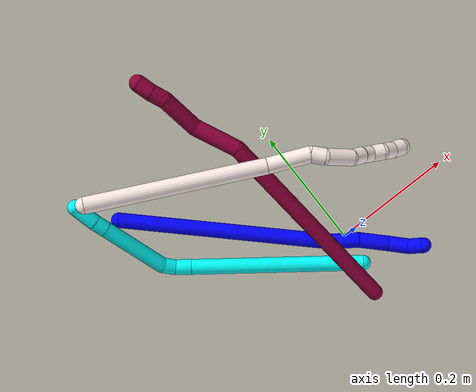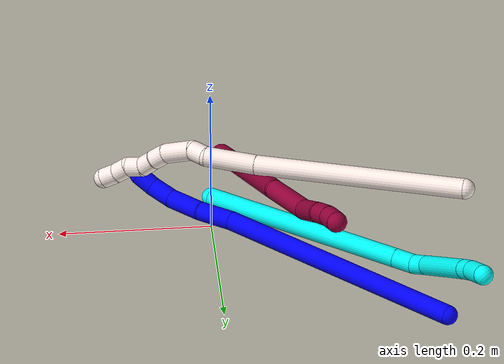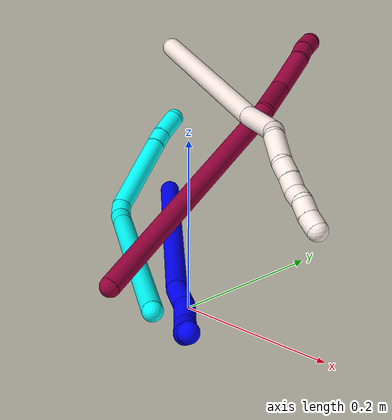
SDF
<sdf version="1.7">
 <world name="default">
  <model name="photoneo_s_sensor">
   <static>1</static>
   <pose>0 0 2 1.57079 1.57079 3.14159</pose>
   <link name="link">
    <inertial><mass>0.1</mass></inertial>
    <sensor name="sensor" type="depth">
     <update_rate>30</update_rate>
     <camera>
      <horizontal_fov>1.22</horizontal_fov>
      <image><width>1920</width><height>1200</height><format>B8G8R8</format></image>
      <clip><near>0.1</near><far>4</far></clip>
      <depth_camera><output>points</output></depth_camera>
     </camera>
     <plugin name="camera_plugin" filename="libgazebo_ros_depth_camera.so">
      <baseline>0.2</baseline>
      <alwaysOn>1</alwaysOn>
      <updateRate>0.0</updateRate>
      <cameraName>camera_ir</cameraName>
      <imageTopicName>/camera/color/image_raw</imageTopicName>
      <cameraInfoTopicName>/camera/color/camera_info</cameraInfoTopicName>
      <depthImageTopicName>/camera/depth/image_raw</depthImageTopicName>
      <depthImageCameraInfoTopicName>/camera/depth/camera_info</depthImageCameraInfoTopicName>
      <pointCloudTopicName>/camera/depth/points</pointCloudTopicName>
      <frameName>fr_optical</frameName>
      <pointCloudCutoff>0.1</pointCloudCutoff>
      <pointCloudCutoffMax>2.0</pointCloudCutoffMax>
      <distortionK1>0</distortionK1>
      <distortionK2>0</distortionK2>
      <distortionK3>0</distortionK3>
      <distortionT1>0</distortionT1>
      <distortionT2>0</distortionT2>
      <CxPrime>0</CxPrime>
      <Cx>0</Cx>
      <Cy>0</Cy>
      <focalLength>0</focalLength>
      <hackBaseline>0</hackBaseline>
     </plugin>
    </sensor>
   </link>
  </model>
  <model name="bin">
   <static>1</static>
   <link name="bottom">
    <collision name="collision-bottom">
     <pose>0 0 -0.01 0 -0 0</pose>
     <geometry><box><size>0.8 0.6 0.02</size></box></geometry>
     <surface>
      <friction><ode><mu>100</mu><mu2>100</mu2></ode></friction>
      <contact><collide_bitmask>65535</collide_bitmask></contact>
     </surface>
    </collision>
   </link>
   <link name="west_wall">
    <collision name="collision-west_wall">
     <pose>-0.41 0 0.1 0 -0 0</pose>
     <geometry><box><size>0.02 0.6 0.2</size></box></geometry>
     <surface>
      <friction><ode><mu>100</mu><mu2>100</mu2></ode></friction>
      <contact><collide_bitmask>65535</collide_bitmask></contact>
     </surface>
    </collision>
   </link>
   <link name="east_wall">
    <collision name="collision-east_wall">
     <pose>0.41 0 0.1 0 -0 0</pose>
     <geometry><box><size>0.02 0.6 0.2</size></box></geometry>
     <surface>
      <friction><ode><mu>100</mu><mu2>100</mu2></ode></friction>
      <contact><collide_bitmask>65535</collide_bitmask></contact>
     </surface>
    </collision>
   </link>
   <link name="south_wall">
    <collision name="collision-south_wall">
     <pose>0 -0.31 0.1 0 -0 0</pose>
     <geometry><box><size>0.8 0.02 0.2</size></box></geometry>
     <surface>
      <friction><ode><mu>100</mu><mu2>100</mu2></ode></friction>
      <contact><collide_bitmask>65535</collide_bitmask></contact>
     </surface>
    </collision>
   </link>
   <link name="north_wall">
    <collision name="collision-north_wall">
     <pose>0 0.31 0.1 0 -0 0</pose>
     <geometry><box><size>0.8 0.02 0.2</size></box></geometry>
     <surface>
      <friction><ode><mu>100</mu><mu2>100</mu2></ode></friction>
      <contact><collide_bitmask>65535</collide_bitmask></contact>
     </surface>
    </collision>
   </link>
  </model>
  <model name="1">
   <static>0</static>
   <link name="1">
    <collision name="collision-cylinder-e_1_1_4">
     <pose>0.086102 -0.117938 -0.092209 2.23437 0.521937 1.00229</pose>
     <geometry><cylinder><radius>0.0125</radius><length>0.345401</length></cylinder></geometry>
     <surface>
      <friction><ode><mu>1.16</mu><mu2>1.16</mu2><slip1>0</slip1><slip2>0</slip2></ode></friction>
      <contact><ode><kp>1e+06</kp><kd>1</kd><max_vel>0</max_vel><min_depth>0.001</min_depth></ode></contact>
     </surface>
    </collision>
    <visual name="visual-cylinder-e_1_1_4">
     <pose>0.086102 -0.117938 -0.092209 2.23437 0.521937 1.00229</pose>
     <geometry><cylinder><radius>0.0125</radius><length>0.345401</length></cylinder></geometry>
     <material><ambient>0 0 1 1</ambient></material>
    </visual>
    <collision name="collision-cylinder-e_2_4_5">
     <pose>0.181406 -0.25455 -0.196151 2.13176 0.395308 0.695258</pose>
     <geometry><cylinder><radius>0.0125</radius><length>0.047793</length></cylinder></geometry>
     <surface>
      <friction><ode><mu>1.16</mu><mu2>1.16</mu2><slip1>0</slip1><slip2>0</slip2></ode></friction>
      <contact><ode><kp>1e+06</kp><kd>1</kd><max_vel>0</max_vel><min_depth>0.001</min_depth></ode></contact>
     </surface>
    </collision>
    <visual name="visual-cylinder-e_2_4_5">
     <pose>0.181406 -0.25455 -0.196151 2.13176 0.395308 0.695258</pose>
     <geometry><cylinder><radius>0.0125</radius><length>0.047793</length></cylinder></geometry>
     <material><ambient>0 0 1 1</ambient></material>
    </visual>
    <collision name="collision-cylinder-e_3_5_6">
     <pose>0.203257 -0.28963 -0.220605 2.23038 0.547227 1.04032</pose>
     <geometry><cylinder><radius>0.0125</radius><length>0.048622</length></cylinder></geometry>
     <surface>
      <friction><ode><mu>1.16</mu><mu2>1.16</mu2><slip1>0</slip1><slip2>0</slip2></ode></friction>
      <contact><ode><kp>1e+06</kp><kd>1</kd><max_vel>0</max_vel><min_depth>0.001</min_depth></ode></contact>
     </surface>
    </collision>
    <visual name="visual-cylinder-e_3_5_6">
     <pose>0.203257 -0.28963 -0.220605 2.23038 0.547227 1.04032</pose>
     <geometry><cylinder><radius>0.0125</radius><length>0.048622</length></cylinder></geometry>
     <material><ambient>0 0 1 1</ambient></material>
    </visual>
    <collision name="collision-cylinder-e_4_6_7">
     <pose>0.223354 -0.316211 -0.244395 2.39819 0.459919 1.08163</pose>
     <geometry><cylinder><radius>0.0125</radius><length>0.033555</length></cylinder></geometry>
     <surface>
      <friction><ode><mu>1.16</mu><mu2>1.16</mu2><slip1>0</slip1><slip2>0</slip2></ode></friction>
      <contact><ode><kp>1e+06</kp><kd>1</kd><max_vel>0</max_vel><min_depth>0.001</min_depth></ode></contact>
     </surface>
    </collision>
    <visual name="visual-cylinder-e_4_6_7">
     <pose>0.223354 -0.316211 -0.244395 2.39819 0.459919 1.08163</pose>
     <geometry><cylinder><radius>0.0125</radius><length>0.033555</length></cylinder></geometry>
     <material><ambient>0 0 1 1</ambient></material>
    </visual>
    <collision name="collision-cylinder-e_5_7_2">
     <pose>0.231977 -0.33355 -0.26541 2.51742 0.095603 0.294406</pose>
     <geometry><cylinder><radius>0.0125</radius><length>0.02463</length></cylinder></geometry>
     <surface>
      <friction><ode><mu>1.16</mu><mu2>1.16</mu2><slip1>0</slip1><slip2>0</slip2></ode></friction>
      <contact><ode><kp>1e+06</kp><kd>1</kd><max_vel>0</max_vel><min_depth>0.001</min_depth></ode></contact>
     </surface>
    </collision>
    <visual name="visual-cylinder-e_5_7_2">
     <pose>0.231977 -0.33355 -0.26541 2.51742 0.095603 0.294406</pose>
     <geometry><cylinder><radius>0.0125</radius><length>0.02463</length></cylinder></geometry>
     <material><ambient>0 0 1 1</ambient></material>
    </visual>
    <collision name="collision-sphere-2">
     <pose>0.233152 -0.340714 -0.275357 0 -0 0</pose>
     <geometry><sphere><radius>0.0125</radius></sphere></geometry>
     <surface>
      <friction><ode><mu>1.16</mu><mu2>1.16</mu2><slip1>0</slip1><slip2>0</slip2></ode></friction>
      <contact><ode><kp>1e+06</kp><kd>1</kd><max_vel>0</max_vel><min_depth>0.001</min_depth></ode></contact>
     </surface>
    </collision>
    <visual name="visual-sphere-2">
     <pose>0.233152 -0.340714 -0.275357 0 -0 0</pose>
     <geometry><sphere><radius>0.0125</radius></sphere></geometry>
     <material><ambient>0 0 1 1</ambient></material>
    </visual>
    <collision name="collision-sphere-7">
     <pose>0.230801 -0.326386 -0.255462 0 -0 0</pose>
     <geometry><sphere><radius>0.0125</radius></sphere></geometry>
     <surface>
      <friction><ode><mu>1.16</mu><mu2>1.16</mu2><slip1>0</slip1><slip2>0</slip2></ode></friction>
      <contact><ode><kp>1e+06</kp><kd>1</kd><max_vel>0</max_vel><min_depth>0.001</min_depth></ode></contact>
     </surface>
    </collision>
    <visual name="visual-sphere-7">
     <pose>0.230801 -0.326386 -0.255462 0 -0 0</pose>
     <geometry><sphere><radius>0.0125</radius></sphere></geometry>
     <material><ambient>0 0 1 1</ambient></material>
    </visual>
    <collision name="collision-sphere-6">
     <pose>0.215907 -0.306036 -0.233327 0 -0 0</pose>
     <geometry><sphere><radius>0.0125</radius></sphere></geometry>
     <surface>
      <friction><ode><mu>1.16</mu><mu2>1.16</mu2><slip1>0</slip1><slip2>0</slip2></ode></friction>
      <contact><ode><kp>1e+06</kp><kd>1</kd><max_vel>0</max_vel><min_depth>0.001</min_depth></ode></contact>
     </surface>
    </collision>
    <visual name="visual-sphere-6">
     <pose>0.215907 -0.306036 -0.233327 0 -0 0</pose>
     <geometry><sphere><radius>0.0125</radius></sphere></geometry>
     <material><ambient>0 0 1 1</ambient></material>
    </visual>
    <collision name="collision-sphere-5">
     <pose>0.190608 -0.273224 -0.207883 0 -0 0</pose>
     <geometry><sphere><radius>0.0125</radius></sphere></geometry>
     <surface>
      <friction><ode><mu>1.16</mu><mu2>1.16</mu2><slip1>0</slip1><slip2>0</slip2></ode></friction>
      <contact><ode><kp>1e+06</kp><kd>1</kd><max_vel>0</max_vel><min_depth>0.001</min_depth></ode></contact>
     </surface>
    </collision>
    <visual name="visual-sphere-5">
     <pose>0.190608 -0.273224 -0.207883 0 -0 0</pose>
     <geometry><sphere><radius>0.0125</radius></sphere></geometry>
     <material><ambient>0 0 1 1</ambient></material>
    </visual>
    <collision name="collision-sphere-1">
     <geometry><sphere><radius>0.0125</radius></sphere></geometry>
     <surface>
      <friction><ode><mu>1.16</mu><mu2>1.16</mu2><slip1>0</slip1><slip2>0</slip2></ode></friction>
      <contact><ode><kp>1e+06</kp><kd>1</kd><max_vel>0</max_vel><min_depth>0.001</min_depth></ode></contact>
     </surface>
    </collision>
    <visual name="visual-sphere-1">
     <geometry><sphere><radius>0.0125</radius></sphere></geometry>
     <material><ambient>0 0 1 1</ambient></material>
    </visual>
    <collision name="collision-sphere-4">
     <pose>0.172203 -0.235876 -0.184418 0 -0 0</pose>
     <geometry><sphere><radius>0.0125</radius></sphere></geometry>
     <surface>
      <friction><ode><mu>1.16</mu><mu2>1.16</mu2><slip1>0</slip1><slip2>0</slip2></ode></friction>
      <contact><ode><kp>1e+06</kp><kd>1</kd><max_vel>0</max_vel><min_depth>0.001</min_depth></ode></contact>
     </surface>
    </collision>
    <visual name="visual-sphere-4">
     <pose>0.172203 -0.235876 -0.184418 0 -0 0</pose>
     <geometry><sphere><radius>0.0125</radius></sphere></geometry>
     <material><ambient>0 0 1 1</ambient></material>
    </visual>
    <inertial>
     <pose>0.123001 -0.171619 -0.133375 0 -0 0</pose>
     <mass>0.5</mass>
     <inertia>
      <ixx>0.004181</ixx>
      <ixy>0</ixy>
      <ixz>0</ixz>
      <iyy>0.002505</iyy>
      <iyz>0</iyz>
      <izz>0.000622</izz>
     </inertia>
    </inertial>
   </link>
   <pose>-0.276782 0.245338 0.012512 2.85285 0.567874 -1.69768</pose>
  </model>
  <model name="3">
   <static>0</static>
   <link name="3">
    <collision name="collision-cylinder-e_1_1_4">
     <pose>-0.057782 0.045747 0.118229 -0.369194 -0.427665 0.08105</pose>
     <geometry><cylinder><radius>0.0125</radius><length>0.278638</length></cylinder></geometry>
     <surface>
      <friction><ode><mu>1.16</mu><mu2>1.16</mu2><slip1>0</slip1><slip2>0</slip2></ode></friction>
      <contact><ode><kp>1e+06</kp><kd>1</kd><max_vel>0</max_vel><min_depth>0.001</min_depth></ode></contact>
     </surface>
    </collision>
    <visual name="visual-cylinder-e_1_1_4">
     <pose>-0.057782 0.045747 0.118229 -0.369194 -0.427665 0.08105</pose>
     <geometry><cylinder><radius>0.0125</radius><length>0.278638</length></cylinder></geometry>
     <material><ambient>0.003922 1 0.996078 1</ambient></material>
    </visual>
    <collision name="collision-cylinder-e_2_4_5">
     <pose>-0.121073 0.095861 0.247918 -0.364016 -0.422169 0.078832</pose>
     <geometry><cylinder><radius>0.0125</radius><length>0.026887</length></cylinder></geometry>
     <surface>
      <friction><ode><mu>1.16</mu><mu2>1.16</mu2><slip1>0</slip1><slip2>0</slip2></ode></friction>
      <contact><ode><kp>1e+06</kp><kd>1</kd><max_vel>0</max_vel><min_depth>0.001</min_depth></ode></contact>
     </surface>
    </collision>
    <visual name="visual-cylinder-e_2_4_5">
     <pose>-0.121073 0.095861 0.247918 -0.364016 -0.422169 0.078832</pose>
     <geometry><cylinder><radius>0.0125</radius><length>0.026887</length></cylinder></geometry>
     <material><ambient>0.003922 1 0.996078 1</ambient></material>
    </visual>
    <collision name="collision-cylinder-e_3_5_6">
     <pose>-0.134486 0.103254 0.266237 -0.415676 -0.811883 0.180787</pose>
     <geometry><cylinder><radius>0.0125</radius><length>0.021789</length></cylinder></geometry>
     <surface>
      <friction><ode><mu>1.16</mu><mu2>1.16</mu2><slip1>0</slip1><slip2>0</slip2></ode></friction>
      <contact><ode><kp>1e+06</kp><kd>1</kd><max_vel>0</max_vel><min_depth>0.001</min_depth></ode></contact>
     </surface>
    </collision>
    <visual name="visual-cylinder-e_3_5_6">
     <pose>-0.134486 0.103254 0.266237 -0.415676 -0.811883 0.180787</pose>
     <geometry><cylinder><radius>0.0125</radius><length>0.021789</length></cylinder></geometry>
     <material><ambient>0.003922 1 0.996078 1</ambient></material>
    </visual>
    <collision name="collision-cylinder-e_4_6_7">
     <pose>-0.19458 0.103962 0.296863 0.09726 -1.14165 -0.062483</pose>
     <geometry><cylinder><radius>0.0125</radius><length>0.114787</length></cylinder></geometry>
     <surface>
      <friction><ode><mu>1.16</mu><mu2>1.16</mu2><slip1>0</slip1><slip2>0</slip2></ode></friction>
      <contact><ode><kp>1e+06</kp><kd>1</kd><max_vel>0</max_vel><min_depth>0.001</min_depth></ode></contact>
     </surface>
    </collision>
    <visual name="visual-cylinder-e_4_6_7">
     <pose>-0.19458 0.103962 0.296863 0.09726 -1.14165 -0.062483</pose>
     <geometry><cylinder><radius>0.0125</radius><length>0.114787</length></cylinder></geometry>
     <material><ambient>0.003922 1 0.996078 1</ambient></material>
    </visual>
    <collision name="collision-cylinder-e_5_7_8">
     <pose>-0.256052 0.101199 0.325321 0.094422 -1.10122 -0.057997</pose>
     <geometry><cylinder><radius>0.0125</radius><length>0.02082</length></cylinder></geometry>
     <surface>
      <friction><ode><mu>1.16</mu><mu2>1.16</mu2><slip1>0</slip1><slip2>0</slip2></ode></friction>
      <contact><ode><kp>1e+06</kp><kd>1</kd><max_vel>0</max_vel><min_depth>0.001</min_depth></ode></contact>
     </surface>
    </collision>
    <visual name="visual-cylinder-e_5_7_8">
     <pose>-0.256052 0.101199 0.325321 0.094422 -1.10122 -0.057997</pose>
     <geometry><cylinder><radius>0.0125</radius><length>0.02082</length></cylinder></geometry>
     <material><ambient>0.003922 1 0.996078 1</ambient></material>
    </visual>
    <collision name="collision-cylinder-e_6_8_2">
     <pose>-0.281657 0.097873 0.338317 0.333962 -1.07668 -0.200632</pose>
     <geometry><cylinder><radius>0.0125</radius><length>0.037079</length></cylinder></geometry>
     <surface>
      <friction><ode><mu>1.16</mu><mu2>1.16</mu2><slip1>0</slip1><slip2>0</slip2></ode></friction>
      <contact><ode><kp>1e+06</kp><kd>1</kd><max_vel>0</max_vel><min_depth>0.001</min_depth></ode></contact>
     </surface>
    </collision>
    <visual name="visual-cylinder-e_6_8_2">
     <pose>-0.281657 0.097873 0.338317 0.333962 -1.07668 -0.200632</pose>
     <geometry><cylinder><radius>0.0125</radius><length>0.037079</length></cylinder></geometry>
     <material><ambient>0.003922 1 0.996078 1</ambient></material>
    </visual>
    <collision name="collision-sphere-2">
     <pose>-0.297979 0.094991 0.346624 0 -0 0</pose>
     <geometry><sphere><radius>0.0125</radius></sphere></geometry>
     <surface>
      <friction><ode><mu>1.16</mu><mu2>1.16</mu2><slip1>0</slip1><slip2>0</slip2></ode></friction>
      <contact><ode><kp>1e+06</kp><kd>1</kd><max_vel>0</max_vel><min_depth>0.001</min_depth></ode></contact>
     </surface>
    </collision>
    <visual name="visual-sphere-2">
     <pose>-0.297979 0.094991 0.346624 0 -0 0</pose>
     <geometry><sphere><radius>0.0125</radius></sphere></geometry>
     <material><ambient>0.003922 1 0.996078 1</ambient></material>
    </visual>
    <collision name="collision-sphere-4">
     <pose>-0.115564 0.091494 0.236459 0 -0 0</pose>
     <geometry><sphere><radius>0.0125</radius></sphere></geometry>
     <surface>
      <friction><ode><mu>1.16</mu><mu2>1.16</mu2><slip1>0</slip1><slip2>0</slip2></ode></friction>
      <contact><ode><kp>1e+06</kp><kd>1</kd><max_vel>0</max_vel><min_depth>0.001</min_depth></ode></contact>
     </surface>
    </collision>
    <visual name="visual-sphere-4">
     <pose>-0.115564 0.091494 0.236459 0 -0 0</pose>
     <geometry><sphere><radius>0.0125</radius></sphere></geometry>
     <material><ambient>0.003922 1 0.996078 1</ambient></material>
    </visual>
    <collision name="collision-sphere-1">
     <geometry><sphere><radius>0.0125</radius></sphere></geometry>
     <surface>
      <friction><ode><mu>1.16</mu><mu2>1.16</mu2><slip1>0</slip1><slip2>0</slip2></ode></friction>
      <contact><ode><kp>1e+06</kp><kd>1</kd><max_vel>0</max_vel><min_depth>0.001</min_depth></ode></contact>
     </surface>
    </collision>
    <visual name="visual-sphere-1">
     <geometry><sphere><radius>0.0125</radius></sphere></geometry>
     <material><ambient>0.003922 1 0.996078 1</ambient></material>
    </visual>
    <collision name="collision-sphere-8">
     <pose>-0.265335 0.100755 0.330011 0 -0 0</pose>
     <geometry><sphere><radius>0.0125</radius></sphere></geometry>
     <surface>
      <friction><ode><mu>1.16</mu><mu2>1.16</mu2><slip1>0</slip1><slip2>0</slip2></ode></friction>
      <contact><ode><kp>1e+06</kp><kd>1</kd><max_vel>0</max_vel><min_depth>0.001</min_depth></ode></contact>
     </surface>
    </collision>
    <visual name="visual-sphere-8">
     <pose>-0.265335 0.100755 0.330011 0 -0 0</pose>
     <geometry><sphere><radius>0.0125</radius></sphere></geometry>
     <material><ambient>0.003922 1 0.996078 1</ambient></material>
    </visual>
    <collision name="collision-sphere-5">
     <pose>-0.126581 0.100227 0.259378 0 -0 0</pose>
     <geometry><sphere><radius>0.0125</radius></sphere></geometry>
     <surface>
      <friction><ode><mu>1.16</mu><mu2>1.16</mu2><slip1>0</slip1><slip2>0</slip2></ode></friction>
      <contact><ode><kp>1e+06</kp><kd>1</kd><max_vel>0</max_vel><min_depth>0.001</min_depth></ode></contact>
     </surface>
    </collision>
    <visual name="visual-sphere-5">
     <pose>-0.126581 0.100227 0.259378 0 -0 0</pose>
     <geometry><sphere><radius>0.0125</radius></sphere></geometry>
     <material><ambient>0.003922 1 0.996078 1</ambient></material>
    </visual>
    <collision name="collision-sphere-6">
     <pose>-0.142391 0.106281 0.273095 0 -0 0</pose>
     <geometry><sphere><radius>0.0125</radius></sphere></geometry>
     <surface>
      <friction><ode><mu>1.16</mu><mu2>1.16</mu2><slip1>0</slip1><slip2>0</slip2></ode></friction>
      <contact><ode><kp>1e+06</kp><kd>1</kd><max_vel>0</max_vel><min_depth>0.001</min_depth></ode></contact>
     </surface>
    </collision>
    <visual name="visual-sphere-6">
     <pose>-0.142391 0.106281 0.273095 0 -0 0</pose>
     <geometry><sphere><radius>0.0125</radius></sphere></geometry>
     <material><ambient>0.003922 1 0.996078 1</ambient></material>
    </visual>
    <collision name="collision-sphere-7">
     <pose>-0.246769 0.101643 0.320632 0 -0 0</pose>
     <geometry><sphere><radius>0.0125</radius></sphere></geometry>
     <surface>
      <friction><ode><mu>1.16</mu><mu2>1.16</mu2><slip1>0</slip1><slip2>0</slip2></ode></friction>
      <contact><ode><kp>1e+06</kp><kd>1</kd><max_vel>0</max_vel><min_depth>0.001</min_depth></ode></contact>
     </surface>
    </collision>
    <visual name="visual-sphere-7">
     <pose>-0.246769 0.101643 0.320632 0 -0 0</pose>
     <geometry><sphere><radius>0.0125</radius></sphere></geometry>
     <material><ambient>0.003922 1 0.996078 1</ambient></material>
    </visual>
    <inertial>
     <pose>-0.120791 0.070487 0.197607 0 -0 0</pose>
     <mass>0.5</mass>
     <inertia>
      <ixx>0.001813</ixx>
      <ixy>0</ixy>
      <ixz>0</ixz>
      <iyy>0.001987</iyy>
      <iyz>0</iyz>
      <izz>0.000316</izz>
     </inertia>
    </inertial>
   </link>
   <pose>-0.004237 -0.05285 0.011499 2.56641 0.910862 -1.46275</pose>
  </model>
  <model name="8">
   <static>0</static>
   <link name="8">
    <collision name="collision-cylinder-e_1_1_4">
     <pose>-0.008889 0.10876 0.120682 -0.733482 -0.054664 0.021002</pose>
     <geometry><cylinder><radius>0.0125</radius><length>0.325404</length></cylinder></geometry>
     <surface>
      <friction><ode><mu>1.16</mu><mu2>1.16</mu2><slip1>0</slip1><slip2>0</slip2></ode></friction>
      <contact><ode><kp>1e+06</kp><kd>1</kd><max_vel>0</max_vel><min_depth>0.001</min_depth></ode></contact>
     </surface>
    </collision>
    <visual name="visual-cylinder-e_1_1_4">
     <pose>-0.008889 0.10876 0.120682 -0.733482 -0.054664 0.021002</pose>
     <geometry><cylinder><radius>0.0125</radius><length>0.325404</length></cylinder></geometry>
     <material><ambient>0.584314 0 0.227451 1</ambient></material>
    </visual>
    <collision name="collision-cylinder-e_2_4_5">
     <pose>-0.007598 0.244741 0.260747 -0.952053 0.295723 -0.153286</pose>
     <geometry><cylinder><radius>0.0125</radius><length>0.069868</length></cylinder></geometry>
     <surface>
      <friction><ode><mu>1.16</mu><mu2>1.16</mu2><slip1>0</slip1><slip2>0</slip2></ode></friction>
      <contact><ode><kp>1e+06</kp><kd>1</kd><max_vel>0</max_vel><min_depth>0.001</min_depth></ode></contact>
     </surface>
    </collision>
    <visual name="visual-cylinder-e_2_4_5">
     <pose>-0.007598 0.244741 0.260747 -0.952053 0.295723 -0.153286</pose>
     <geometry><cylinder><radius>0.0125</radius><length>0.069868</length></cylinder></geometry>
     <material><ambient>0.584314 0 0.227451 1</ambient></material>
    </visual>
    <collision name="collision-cylinder-e_3_5_6">
     <pose>-0.000908 0.293872 0.300185 -0.829531 -0.116997 0.051562</pose>
     <geometry><cylinder><radius>0.0125</radius><length>0.059814</length></cylinder></geometry>
     <surface>
      <friction><ode><mu>1.16</mu><mu2>1.16</mu2><slip1>0</slip1><slip2>0</slip2></ode></friction>
      <contact><ode><kp>1e+06</kp><kd>1</kd><max_vel>0</max_vel><min_depth>0.001</min_depth></ode></contact>
     </surface>
    </collision>
    <visual name="visual-cylinder-e_3_5_6">
     <pose>-0.000908 0.293872 0.300185 -0.829531 -0.116997 0.051562</pose>
     <geometry><cylinder><radius>0.0125</radius><length>0.059814</length></cylinder></geometry>
     <material><ambient>0.584314 0 0.227451 1</ambient></material>
    </visual>
    <collision name="collision-cylinder-e_4_6_7">
     <pose>-0.003162 0.32519 0.326405 -0.990813 0.109543 -0.059234</pose>
     <geometry><cylinder><radius>0.0125</radius><length>0.022632</length></cylinder></geometry>
     <surface>
      <friction><ode><mu>1.16</mu><mu2>1.16</mu2><slip1>0</slip1><slip2>0</slip2></ode></friction>
      <contact><ode><kp>1e+06</kp><kd>1</kd><max_vel>0</max_vel><min_depth>0.001</min_depth></ode></contact>
     </surface>
    </collision>
    <visual name="visual-cylinder-e_4_6_7">
     <pose>-0.003162 0.32519 0.326405 -0.990813 0.109543 -0.059234</pose>
     <geometry><cylinder><radius>0.0125</radius><length>0.022632</length></cylinder></geometry>
     <material><ambient>0.584314 0 0.227451 1</ambient></material>
    </visual>
    <collision name="collision-cylinder-e_5_7_2">
     <pose>5.2e-05 0.342743 0.339911 -0.837184 0.178411 -0.079542</pose>
     <geometry><cylinder><radius>0.0125</radius><length>0.022283</length></cylinder></geometry>
     <surface>
      <friction><ode><mu>1.16</mu><mu2>1.16</mu2><slip1>0</slip1><slip2>0</slip2></ode></friction>
      <contact><ode><kp>1e+06</kp><kd>1</kd><max_vel>0</max_vel><min_depth>0.001</min_depth></ode></contact>
     </surface>
    </collision>
    <visual name="visual-cylinder-e_5_7_2">
     <pose>5.2e-05 0.342743 0.339911 -0.837184 0.178411 -0.079542</pose>
     <geometry><cylinder><radius>0.0125</radius><length>0.022283</length></cylinder></geometry>
     <material><ambient>0.584314 0 0.227451 1</ambient></material>
    </visual>
    <collision name="collision-sphere-2">
     <pose>0.002029 0.350887 0.347252 0 -0 0</pose>
     <geometry><sphere><radius>0.0125</radius></sphere></geometry>
     <surface>
      <friction><ode><mu>1.16</mu><mu2>1.16</mu2><slip1>0</slip1><slip2>0</slip2></ode></friction>
      <contact><ode><kp>1e+06</kp><kd>1</kd><max_vel>0</max_vel><min_depth>0.001</min_depth></ode></contact>
     </surface>
    </collision>
    <visual name="visual-sphere-2">
     <pose>0.002029 0.350887 0.347252 0 -0 0</pose>
     <geometry><sphere><radius>0.0125</radius></sphere></geometry>
     <material><ambient>0.584314 0 0.227451 1</ambient></material>
    </visual>
    <collision name="collision-sphere-7">
     <pose>-0.001925 0.334599 0.332569 0 -0 0</pose>
     <geometry><sphere><radius>0.0125</radius></sphere></geometry>
     <surface>
      <friction><ode><mu>1.16</mu><mu2>1.16</mu2><slip1>0</slip1><slip2>0</slip2></ode></friction>
      <contact><ode><kp>1e+06</kp><kd>1</kd><max_vel>0</max_vel><min_depth>0.001</min_depth></ode></contact>
     </surface>
    </collision>
    <visual name="visual-sphere-7">
     <pose>-0.001925 0.334599 0.332569 0 -0 0</pose>
     <geometry><sphere><radius>0.0125</radius></sphere></geometry>
     <material><ambient>0.584314 0 0.227451 1</ambient></material>
    </visual>
    <collision name="collision-sphere-6">
     <pose>-0.004399 0.315781 0.320241 0 -0 0</pose>
     <geometry><sphere><radius>0.0125</radius></sphere></geometry>
     <surface>
      <friction><ode><mu>1.16</mu><mu2>1.16</mu2><slip1>0</slip1><slip2>0</slip2></ode></friction>
      <contact><ode><kp>1e+06</kp><kd>1</kd><max_vel>0</max_vel><min_depth>0.001</min_depth></ode></contact>
     </surface>
    </collision>
    <visual name="visual-sphere-6">
     <pose>-0.004399 0.315781 0.320241 0 -0 0</pose>
     <geometry><sphere><radius>0.0125</radius></sphere></geometry>
     <material><ambient>0.584314 0 0.227451 1</ambient></material>
    </visual>
    <collision name="collision-sphere-5">
     <pose>0.002583 0.271964 0.28013 0 -0 0</pose>
     <geometry><sphere><radius>0.0125</radius></sphere></geometry>
     <surface>
      <friction><ode><mu>1.16</mu><mu2>1.16</mu2><slip1>0</slip1><slip2>0</slip2></ode></friction>
      <contact><ode><kp>1e+06</kp><kd>1</kd><max_vel>0</max_vel><min_depth>0.001</min_depth></ode></contact>
     </surface>
    </collision>
    <visual name="visual-sphere-5">
     <pose>0.002583 0.271964 0.28013 0 -0 0</pose>
     <geometry><sphere><radius>0.0125</radius></sphere></geometry>
     <material><ambient>0.584314 0 0.227451 1</ambient></material>
    </visual>
    <collision name="collision-sphere-1">
     <geometry><sphere><radius>0.0125</radius></sphere></geometry>
     <surface>
      <friction><ode><mu>1.16</mu><mu2>1.16</mu2><slip1>0</slip1><slip2>0</slip2></ode></friction>
      <contact><ode><kp>1e+06</kp><kd>1</kd><max_vel>0</max_vel><min_depth>0.001</min_depth></ode></contact>
     </surface>
    </collision>
    <visual name="visual-sphere-1">
     <geometry><sphere><radius>0.0125</radius></sphere></geometry>
     <material><ambient>0.584314 0 0.227451 1</ambient></material>
    </visual>
    <collision name="collision-sphere-4">
     <pose>-0.017779 0.217519 0.241365 0 -0 0</pose>
     <geometry><sphere><radius>0.0125</radius></sphere></geometry>
     <surface>
      <friction><ode><mu>1.16</mu><mu2>1.16</mu2><slip1>0</slip1><slip2>0</slip2></ode></friction>
      <contact><ode><kp>1e+06</kp><kd>1</kd><max_vel>0</max_vel><min_depth>0.001</min_depth></ode></contact>
     </surface>
    </collision>
    <visual name="visual-sphere-4">
     <pose>-0.017779 0.217519 0.241365 0 -0 0</pose>
     <geometry><sphere><radius>0.0125</radius></sphere></geometry>
     <material><ambient>0.584314 0 0.227451 1</ambient></material>
    </visual>
    <inertial>
     <pose>-0.007097 0.17013 0.18081 0 -0 0</pose>
     <mass>0.5</mass>
     <inertia>
      <ixx>0.002989</ixx>
      <ixy>0</ixy>
      <ixz>0</ixz>
      <iyy>0.002263</iyy>
      <iyz>0</iyz>
      <izz>-0.001792</izz>
     </inertia>
    </inertial>
   </link>
   <pose>-0.022048 -0.099696 0.050034 1.44654 1.08659 2.50279</pose>
  </model>
  <model name="11">
   <static>0</static>
   <link name="11">
    <collision name="collision-cylinder-e_1_1_4">
     <pose>0.104086 -0.084621 -0.003325 1.61007 0.887803 0.918648</pose>
     <geometry><cylinder><radius>0.0125</radius><length>0.26837</length></cylinder></geometry>
     <surface>
      <friction><ode><mu>1.16</mu><mu2>1.16</mu2><slip1>0</slip1><slip2>0</slip2></ode></friction>
      <contact><ode><kp>1e+06</kp><kd>1</kd><max_vel>0</max_vel><min_depth>0.001</min_depth></ode></contact>
     </surface>
    </collision>
    <visual name="visual-cylinder-e_1_1_4">
     <pose>0.104086 -0.084621 -0.003325 1.61007 0.887803 0.918648</pose>
     <geometry><cylinder><radius>0.0125</radius><length>0.26837</length></cylinder></geometry>
     <material><ambient>1 0.933333 0.909804 1</ambient></material>
    </visual>
    <collision name="collision-cylinder-e_2_4_5">
     <pose>0.234796 -0.188482 -0.004933 1.48181 0.943176 0.872967</pose>
     <geometry><cylinder><radius>0.0125</radius><length>0.065788</length></cylinder></geometry>
     <surface>
      <friction><ode><mu>1.16</mu><mu2>1.16</mu2><slip1>0</slip1><slip2>0</slip2></ode></friction>
      <contact><ode><kp>1e+06</kp><kd>1</kd><max_vel>0</max_vel><min_depth>0.001</min_depth></ode></contact>
     </surface>
    </collision>
    <visual name="visual-cylinder-e_2_4_5">
     <pose>0.234796 -0.188482 -0.004933 1.48181 0.943176 0.872967</pose>
     <geometry><cylinder><radius>0.0125</radius><length>0.065788</length></cylinder></geometry>
     <material><ambient>1 0.933333 0.909804 1</ambient></material>
    </visual>
    <collision name="collision-cylinder-e_3_5_6">
     <pose>0.266929 -0.217207 -0.00175 1.41734 0.520947 0.449238</pose>
     <geometry><cylinder><radius>0.0125</radius><length>0.022131</length></cylinder></geometry>
     <surface>
      <friction><ode><mu>1.16</mu><mu2>1.16</mu2><slip1>0</slip1><slip2>0</slip2></ode></friction>
      <contact><ode><kp>1e+06</kp><kd>1</kd><max_vel>0</max_vel><min_depth>0.001</min_depth></ode></contact>
     </surface>
    </collision>
    <visual name="visual-cylinder-e_3_5_6">
     <pose>0.266929 -0.217207 -0.00175 1.41734 0.520947 0.449238</pose>
     <geometry><cylinder><radius>0.0125</radius><length>0.022131</length></cylinder></geometry>
     <material><ambient>1 0.933333 0.909804 1</ambient></material>
    </visual>
    <collision name="collision-cylinder-e_4_6_7">
     <pose>0.284624 -0.243467 -0.00684 1.94342 0.594905 0.843974</pose>
     <geometry><cylinder><radius>0.0125</radius><length>0.043494</length></cylinder></geometry>
     <surface>
      <friction><ode><mu>1.16</mu><mu2>1.16</mu2><slip1>0</slip1><slip2>0</slip2></ode></friction>
      <contact><ode><kp>1e+06</kp><kd>1</kd><max_vel>0</max_vel><min_depth>0.001</min_depth></ode></contact>
     </surface>
    </collision>
    <visual name="visual-cylinder-e_4_6_7">
     <pose>0.284624 -0.243467 -0.00684 1.94342 0.594905 0.843974</pose>
     <geometry><cylinder><radius>0.0125</radius><length>0.043494</length></cylinder></geometry>
     <material><ambient>1 0.933333 0.909804 1</ambient></material>
    </visual>
    <collision name="collision-cylinder-e_5_7_8">
     <pose>0.303128 -0.265729 -0.018993 2.36606 0.678327 1.42485</pose>
     <geometry><cylinder><radius>0.0125</radius><length>0.020132</length></cylinder></geometry>
     <surface>
      <friction><ode><mu>1.16</mu><mu2>1.16</mu2><slip1>0</slip1><slip2>0</slip2></ode></friction>
      <contact><ode><kp>1e+06</kp><kd>1</kd><max_vel>0</max_vel><min_depth>0.001</min_depth></ode></contact>
     </surface>
    </collision>
    <visual name="visual-cylinder-e_5_7_8">
     <pose>0.303128 -0.265729 -0.018993 2.36606 0.678327 1.42485</pose>
     <geometry><cylinder><radius>0.0125</radius><length>0.020132</length></cylinder></geometry>
     <material><ambient>1 0.933333 0.909804 1</ambient></material>
    </visual>
    <collision name="collision-cylinder-e_6_8_9">
     <pose>0.314978 -0.27704 -0.030613 2.37306 0.583683 1.27794</pose>
     <geometry><cylinder><radius>0.0125</radius><length>0.020081</length></cylinder></geometry>
     <surface>
      <friction><ode><mu>1.16</mu><mu2>1.16</mu2><slip1>0</slip1><slip2>0</slip2></ode></friction>
      <contact><ode><kp>1e+06</kp><kd>1</kd><max_vel>0</max_vel><min_depth>0.001</min_depth></ode></contact>
     </surface>
    </collision>
    <visual name="visual-cylinder-e_6_8_9">
     <pose>0.314978 -0.27704 -0.030613 2.37306 0.583683 1.27794</pose>
     <geometry><cylinder><radius>0.0125</radius><length>0.020081</length></cylinder></geometry>
     <material><ambient>1 0.933333 0.909804 1</ambient></material>
    </visual>
    <collision name="collision-cylinder-e_7_9_10">
     <pose>0.327909 -0.28943 -0.038107 1.7911 0.832645 1.00897</pose>
     <geometry><cylinder><radius>0.0125</radius><length>0.02</length></cylinder></geometry>
     <surface>
      <friction><ode><mu>1.16</mu><mu2>1.16</mu2><slip1>0</slip1><slip2>0</slip2></ode></friction>
      <contact><ode><kp>1e+06</kp><kd>1</kd><max_vel>0</max_vel><min_depth>0.001</min_depth></ode></contact>
     </surface>
    </collision>
    <visual name="visual-cylinder-e_7_9_10">
     <pose>0.327909 -0.28943 -0.038107 1.7911 0.832645 1.00897</pose>
     <geometry><cylinder><radius>0.0125</radius><length>0.02</length></cylinder></geometry>
     <material><ambient>1 0.933333 0.909804 1</ambient></material>
    </visual>
    <collision name="collision-cylinder-e_8_10_11">
     <pose>0.341086 -0.301908 -0.045204 2.33149 0.616239 1.27707</pose>
     <geometry><cylinder><radius>0.0125</radius><length>0.020001</length></cylinder></geometry>
     <surface>
      <friction><ode><mu>1.16</mu><mu2>1.16</mu2><slip1>0</slip1><slip2>0</slip2></ode></friction>
      <contact><ode><kp>1e+06</kp><kd>1</kd><max_vel>0</max_vel><min_depth>0.001</min_depth></ode></contact>
     </surface>
    </collision>
    <visual name="visual-cylinder-e_8_10_11">
     <pose>0.341086 -0.301908 -0.045204 2.33149 0.616239 1.27707</pose>
     <geometry><cylinder><radius>0.0125</radius><length>0.020001</length></cylinder></geometry>
     <material><ambient>1 0.933333 0.909804 1</ambient></material>
    </visual>
    <collision name="collision-cylinder-e_9_11_2">
     <pose>0.353972 -0.313171 -0.0554 2.27756 0.790298 1.47073</pose>
     <geometry><cylinder><radius>0.0125</radius><length>0.020002</length></cylinder></geometry>
     <surface>
      <friction><ode><mu>1.16</mu><mu2>1.16</mu2><slip1>0</slip1><slip2>0</slip2></ode></friction>
      <contact><ode><kp>1e+06</kp><kd>1</kd><max_vel>0</max_vel><min_depth>0.001</min_depth></ode></contact>
     </surface>
    </collision>
    <visual name="visual-cylinder-e_9_11_2">
     <pose>0.353972 -0.313171 -0.0554 2.27756 0.790298 1.47073</pose>
     <geometry><cylinder><radius>0.0125</radius><length>0.020002</length></cylinder></geometry>
     <material><ambient>1 0.933333 0.909804 1</ambient></material>
    </visual>
    <collision name="collision-sphere-2">
     <pose>0.361078 -0.318522 -0.05997 0 -0 0</pose>
     <geometry><sphere><radius>0.0125</radius></sphere></geometry>
     <surface>
      <friction><ode><mu>1.16</mu><mu2>1.16</mu2><slip1>0</slip1><slip2>0</slip2></ode></friction>
      <contact><ode><kp>1e+06</kp><kd>1</kd><max_vel>0</max_vel><min_depth>0.001</min_depth></ode></contact>
     </surface>
    </collision>
    <visual name="visual-sphere-2">
     <pose>0.361078 -0.318522 -0.05997 0 -0 0</pose>
     <geometry><sphere><radius>0.0125</radius></sphere></geometry>
     <material><ambient>1 0.933333 0.909804 1</ambient></material>
    </visual>
    <collision name="collision-sphere-11">
     <pose>0.346866 -0.307819 -0.050831 0 -0 0</pose>
     <geometry><sphere><radius>0.0125</radius></sphere></geometry>
     <surface>
      <friction><ode><mu>1.16</mu><mu2>1.16</mu2><slip1>0</slip1><slip2>0</slip2></ode></friction>
      <contact><ode><kp>1e+06</kp><kd>1</kd><max_vel>0</max_vel><min_depth>0.001</min_depth></ode></contact>
     </surface>
    </collision>
    <visual name="visual-sphere-11">
     <pose>0.346866 -0.307819 -0.050831 0 -0 0</pose>
     <geometry><sphere><radius>0.0125</radius></sphere></geometry>
     <material><ambient>1 0.933333 0.909804 1</ambient></material>
    </visual>
    <collision name="collision-sphere-10">
     <pose>0.335306 -0.295996 -0.039578 0 -0 0</pose>
     <geometry><sphere><radius>0.0125</radius></sphere></geometry>
     <surface>
      <friction><ode><mu>1.16</mu><mu2>1.16</mu2><slip1>0</slip1><slip2>0</slip2></ode></friction>
      <contact><ode><kp>1e+06</kp><kd>1</kd><max_vel>0</max_vel><min_depth>0.001</min_depth></ode></contact>
     </surface>
    </collision>
    <visual name="visual-sphere-10">
     <pose>0.335306 -0.295996 -0.039578 0 -0 0</pose>
     <geometry><sphere><radius>0.0125</radius></sphere></geometry>
     <material><ambient>1 0.933333 0.909804 1</ambient></material>
    </visual>
    <collision name="collision-sphere-9">
     <pose>0.320511 -0.282863 -0.036636 0 -0 0</pose>
     <geometry><sphere><radius>0.0125</radius></sphere></geometry>
     <surface>
      <friction><ode><mu>1.16</mu><mu2>1.16</mu2><slip1>0</slip1><slip2>0</slip2></ode></friction>
      <contact><ode><kp>1e+06</kp><kd>1</kd><max_vel>0</max_vel><min_depth>0.001</min_depth></ode></contact>
     </surface>
    </collision>
    <visual name="visual-sphere-9">
     <pose>0.320511 -0.282863 -0.036636 0 -0 0</pose>
     <geometry><sphere><radius>0.0125</radius></sphere></geometry>
     <material><ambient>1 0.933333 0.909804 1</ambient></material>
    </visual>
    <collision name="collision-sphere-4">
     <pose>0.208171 -0.169243 -0.00665 0 -0 0</pose>
     <geometry><sphere><radius>0.0125</radius></sphere></geometry>
     <surface>
      <friction><ode><mu>1.16</mu><mu2>1.16</mu2><slip1>0</slip1><slip2>0</slip2></ode></friction>
      <contact><ode><kp>1e+06</kp><kd>1</kd><max_vel>0</max_vel><min_depth>0.001</min_depth></ode></contact>
     </surface>
    </collision>
    <visual name="visual-sphere-4">
     <pose>0.208171 -0.169243 -0.00665 0 -0 0</pose>
     <geometry><sphere><radius>0.0125</radius></sphere></geometry>
     <material><ambient>1 0.933333 0.909804 1</ambient></material>
    </visual>
    <collision name="collision-sphere-1">
     <geometry><sphere><radius>0.0125</radius></sphere></geometry>
     <surface>
      <friction><ode><mu>1.16</mu><mu2>1.16</mu2><slip1>0</slip1><slip2>0</slip2></ode></friction>
      <contact><ode><kp>1e+06</kp><kd>1</kd><max_vel>0</max_vel><min_depth>0.001</min_depth></ode></contact>
     </surface>
    </collision>
    <visual name="visual-sphere-1">
     <geometry><sphere><radius>0.0125</radius></sphere></geometry>
     <material><ambient>1 0.933333 0.909804 1</ambient></material>
    </visual>
    <collision name="collision-sphere-8">
     <pose>0.309445 -0.271216 -0.02459 0 -0 0</pose>
     <geometry><sphere><radius>0.0125</radius></sphere></geometry>
     <surface>
      <friction><ode><mu>1.16</mu><mu2>1.16</mu2><slip1>0</slip1><slip2>0</slip2></ode></friction>
      <contact><ode><kp>1e+06</kp><kd>1</kd><max_vel>0</max_vel><min_depth>0.001</min_depth></ode></contact>
     </surface>
    </collision>
    <visual name="visual-sphere-8">
     <pose>0.309445 -0.271216 -0.02459 0 -0 0</pose>
     <geometry><sphere><radius>0.0125</radius></sphere></geometry>
     <material><ambient>1 0.933333 0.909804 1</ambient></material>
    </visual>
    <collision name="collision-sphere-5">
     <pose>0.261422 -0.207722 -0.003217 0 -0 0</pose>
     <geometry><sphere><radius>0.0125</radius></sphere></geometry>
     <surface>
      <friction><ode><mu>1.16</mu><mu2>1.16</mu2><slip1>0</slip1><slip2>0</slip2></ode></friction>
      <contact><ode><kp>1e+06</kp><kd>1</kd><max_vel>0</max_vel><min_depth>0.001</min_depth></ode></contact>
     </surface>
    </collision>
    <visual name="visual-sphere-5">
     <pose>0.261422 -0.207722 -0.003217 0 -0 0</pose>
     <geometry><sphere><radius>0.0125</radius></sphere></geometry>
     <material><ambient>1 0.933333 0.909804 1</ambient></material>
    </visual>
    <collision name="collision-sphere-6">
     <pose>0.272436 -0.226692 -0.000283 0 -0 0</pose>
     <geometry><sphere><radius>0.0125</radius></sphere></geometry>
     <surface>
      <friction><ode><mu>1.16</mu><mu2>1.16</mu2><slip1>0</slip1><slip2>0</slip2></ode></friction>
      <contact><ode><kp>1e+06</kp><kd>1</kd><max_vel>0</max_vel><min_depth>0.001</min_depth></ode></contact>
     </surface>
    </collision>
    <visual name="visual-sphere-6">
     <pose>0.272436 -0.226692 -0.000283 0 -0 0</pose>
     <geometry><sphere><radius>0.0125</radius></sphere></geometry>
     <material><ambient>1 0.933333 0.909804 1</ambient></material>
    </visual>
    <collision name="collision-sphere-7">
     <pose>0.296812 -0.260242 -0.013397 0 -0 0</pose>
     <geometry><sphere><radius>0.0125</radius></sphere></geometry>
     <surface>
      <friction><ode><mu>1.16</mu><mu2>1.16</mu2><slip1>0</slip1><slip2>0</slip2></ode></friction>
      <contact><ode><kp>1e+06</kp><kd>1</kd><max_vel>0</max_vel><min_depth>0.001</min_depth></ode></contact>
     </surface>
    </collision>
    <visual name="visual-sphere-7">
     <pose>0.296812 -0.260242 -0.013397 0 -0 0</pose>
     <geometry><sphere><radius>0.0125</radius></sphere></geometry>
     <material><ambient>1 0.933333 0.909804 1</ambient></material>
    </visual>
    <inertial>
     <pose>0.189111 -0.159021 -0.010649 0 -0 0</pose>
     <mass>0.5</mass>
     <inertia>
      <ixx>0.001503</ixx>
      <ixy>0</ixy>
      <ixz>0</ixz>
      <iyy>0.001793</iyy>
      <iyz>0</iyz>
      <izz>-0.000244</izz>
     </inertia>
    </inertial>
   </link>
   <pose>-0.287921 0.260956 0.210076 0.21378 -0.094029 0.227298</pose>
  </model>
 </world>
</sdf>
